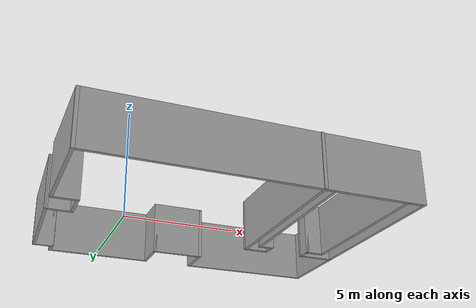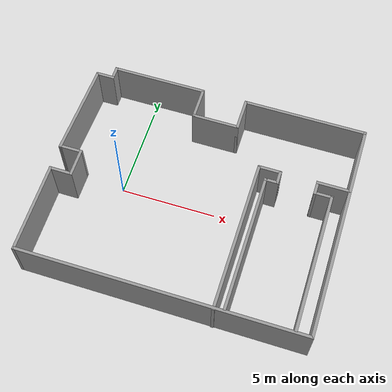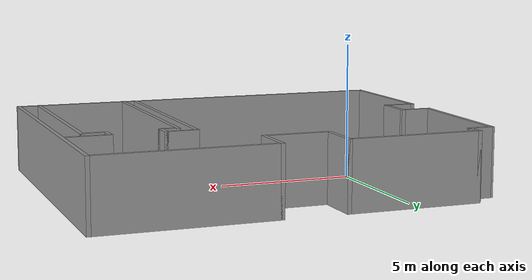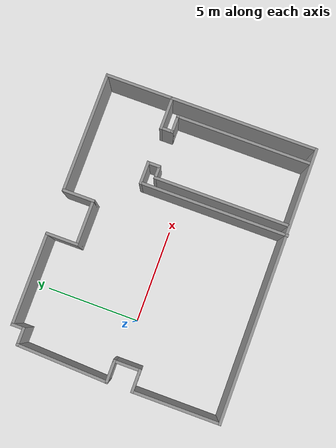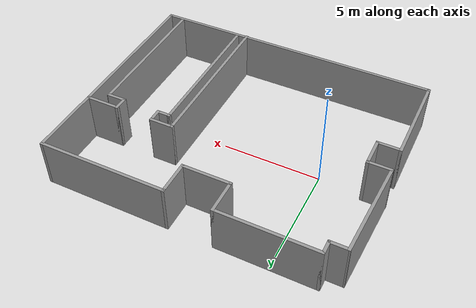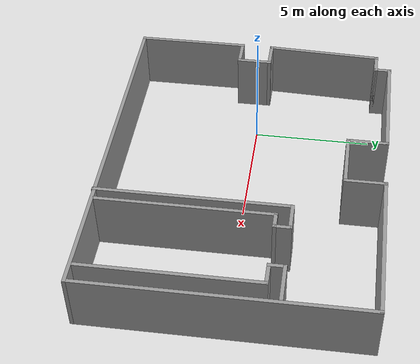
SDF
<?xml version='1.0'?>
<sdf version='1.6'>
  <model name='test3'>
    <pose frame=''>4 0 0 0 -0 0</pose>
    <link name='Wall_0'>
      <collision name='Wall_0_Collision'>
        <geometry>
          <box>
            <size>1 0.15 2.5</size>
          </box>
        </geometry>
        <pose frame=''>0 0 1.25 0 -0 0</pose>
      </collision>
      <visual name='Wall_0_Visual'>
        <pose frame=''>0 0 1.25 0 -0 0</pose>
        <geometry>
          <box>
            <size>1 0.15 2.5</size>
          </box>
        </geometry>
        <material>
          <script>
            <uri>file://media/materials/scripts/gazebo.material</uri>
            <name>Gazebo/Grey</name>
          </script>
          <ambient>1 1 1 1</ambient>
        </material>
      </visual>
      <pose frame=''>-6.67347 5.09486 0 0 -0 0</pose>
    </link>
    <link name='Wall_1'>
      <collision name='Wall_1_Collision'>
        <geometry>
          <box>
            <size>0.75 0.15 2.5</size>
          </box>
        </geometry>
        <pose frame=''>0 0 1.25 0 -0 0</pose>
      </collision>
      <visual name='Wall_1_Visual'>
        <pose frame=''>0 0 1.25 0 -0 0</pose>
        <geometry>
          <box>
            <size>0.75 0.15 2.5</size>
          </box>
        </geometry>
        <material>
          <script>
            <uri>file://media/materials/scripts/gazebo.material</uri>
            <name>Gazebo/Grey</name>
          </script>
          <ambient>1 1 1 1</ambient>
        </material>
      </visual>
      <pose frame=''>-6.24847 5.39486 0 0 -0 1.5708</pose>
    </link>
    <link name='Wall_10'>
      <collision name='Wall_10_Collision'>
        <geometry>
          <box>
            <size>1.25 0.15 2.5</size>
          </box>
        </geometry>
        <pose frame=''>0 0 1.25 0 -0 0</pose>
      </collision>
      <visual name='Wall_10_Visual'>
        <pose frame=''>0 0 1.25 0 -0 0</pose>
        <geometry>
          <box>
            <size>1.25 0.15 2.5</size>
          </box>
        </geometry>
        <material>
          <script>
            <uri>file://media/materials/scripts/gazebo.material</uri>
            <name>Gazebo/Grey</name>
          </script>
          <ambient>1 1 1 1</ambient>
        </material>
      </visual>
      <pose frame=''>-6.74847 -1.05514 0 0 -0 0</pose>
    </link>
    <link name='Wall_11'>
      <collision name='Wall_11_Collision'>
        <geometry>
          <box>
            <size>1.5 0.15 2.5</size>
          </box>
        </geometry>
        <pose frame=''>0 0 1.25 0 -0 0</pose>
      </collision>
      <visual name='Wall_11_Visual'>
        <pose frame=''>0 0 1.25 0 -0 0</pose>
        <geometry>
          <box>
            <size>1.5 0.15 2.5</size>
          </box>
        </geometry>
        <material>
          <script>
            <uri>file://media/materials/scripts/gazebo.material</uri>
            <name>Gazebo/Grey</name>
          </script>
          <ambient>1 1 1 1</ambient>
        </material>
      </visual>
      <pose frame=''>-6.19847 -0.380137 0 0 -0 1.5708</pose>
    </link>
    <link name='Wall_12'>
      <collision name='Wall_12_Collision'>
        <geometry>
          <box>
            <size>1.25 0.15 2.5</size>
          </box>
        </geometry>
        <pose frame=''>0 0 1.25 0 -0 0</pose>
      </collision>
      <visual name='Wall_12_Visual'>
        <pose frame=''>0 0 1.25 0 -0 0</pose>
        <geometry>
          <box>
            <size>1.25 0.15 2.5</size>
          </box>
        </geometry>
        <material>
          <script>
            <uri>file://media/materials/scripts/gazebo.material</uri>
            <name>Gazebo/Grey</name>
          </script>
          <ambient>1 1 1 1</ambient>
        </material>
      </visual>
      <pose frame=''>-6.74847 0.294863 0 0 -0 3.14159</pose>
    </link>
    <link name='Wall_13'>
      <collision name='Wall_13_Collision'>
        <geometry>
          <box>
            <size>4.95416 0.15 2.5</size>
          </box>
        </geometry>
        <pose frame=''>0 0 1.25 0 -0 0</pose>
      </collision>
      <visual name='Wall_13_Visual'>
        <pose frame=''>0 0 1.25 0 -0 0</pose>
        <geometry>
          <box>
            <size>4.95416 0.15 2.5</size>
          </box>
        </geometry>
        <material>
          <script>
            <uri>file://media/materials/scripts/gazebo.material</uri>
            <name>Gazebo/Grey</name>
          </script>
          <ambient>1 1 1 1</ambient>
        </material>
      </visual>
      <pose frame=''>-7.19847 2.69486 0 0 -0 1.52915</pose>
    </link>
    <link name='Wall_15'>
      <collision name='Wall_15_Collision'>
        <geometry>
          <box>
            <size>1.25 0.15 2.5</size>
          </box>
        </geometry>
        <pose frame=''>0 0 1.25 0 -0 0</pose>
      </collision>
      <visual name='Wall_15_Visual'>
        <pose frame=''>0 0 1.25 0 -0 0</pose>
        <geometry>
          <box>
            <size>1.25 0.15 2.5</size>
          </box>
        </geometry>
        <material>
          <script>
            <uri>file://media/materials/scripts/gazebo.material</uri>
            <name>Gazebo/Grey</name>
          </script>
          <ambient>1 1 1 1</ambient>
        </material>
      </visual>
      <pose frame=''>3.19434 2.15514 0 0 -0 0</pose>
    </link>
    <link name='Wall_16'>
      <collision name='Wall_16_Collision'>
        <geometry>
          <box>
            <size>0.75 0.15 2.5</size>
          </box>
        </geometry>
        <pose frame=''>0 0 1.25 0 -0 0</pose>
      </collision>
      <visual name='Wall_16_Visual'>
        <pose frame=''>0 0 1.25 0 -0 0</pose>
        <geometry>
          <box>
            <size>0.75 0.15 2.5</size>
          </box>
        </geometry>
        <material>
          <script>
            <uri>file://media/materials/scripts/gazebo.material</uri>
            <name>Gazebo/Grey</name>
          </script>
          <ambient>1 1 1 1</ambient>
        </material>
      </visual>
      <pose frame=''>3.74434 1.85514 0 0 0 -1.5708</pose>
    </link>
    <link name='Wall_17'>
      <collision name='Wall_17_Collision'>
        <geometry>
          <box>
            <size>0.75 0.15 2.5</size>
          </box>
        </geometry>
        <pose frame=''>0 0 1.25 0 -0 0</pose>
      </collision>
      <visual name='Wall_17_Visual'>
        <pose frame=''>0 0 1.25 0 -0 0</pose>
        <geometry>
          <box>
            <size>0.75 0.15 2.5</size>
          </box>
        </geometry>
        <material>
          <script>
            <uri>file://media/materials/scripts/gazebo.material</uri>
            <name>Gazebo/Grey</name>
          </script>
          <ambient>1 1 1 1</ambient>
        </material>
      </visual>
      <pose frame=''>3.44434 1.55514 0 0 -0 3.14159</pose>
    </link>
    <link name='Wall_18'>
      <collision name='Wall_18_Collision'>
        <geometry>
          <box>
            <size>7.25 0.15 2.5</size>
          </box>
        </geometry>
        <pose frame=''>0 0 1.25 0 -0 0</pose>
      </collision>
      <visual name='Wall_18_Visual'>
        <pose frame=''>0 0 1.25 0 -0 0</pose>
        <geometry>
          <box>
            <size>7.25 0.15 2.5</size>
          </box>
        </geometry>
        <material>
          <script>
            <uri>file://media/materials/scripts/gazebo.material</uri>
            <name>Gazebo/Grey</name>
          </script>
          <ambient>1 1 1 1</ambient>
        </material>
      </visual>
      <pose frame=''>3.14434 -1.99486 0 0 0 -1.5708</pose>
    </link>
    <link name='Wall_2'>
      <collision name='Wall_2_Collision'>
        <geometry>
          <box>
            <size>5 0.15 2.5</size>
          </box>
        </geometry>
        <pose frame=''>0 0 1.25 0 -0 0</pose>
      </collision>
      <visual name='Wall_2_Visual'>
        <pose frame=''>0 0 1.25 0 -0 0</pose>
        <geometry>
          <box>
            <size>5 0.15 2.5</size>
          </box>
        </geometry>
        <material>
          <script>
            <uri>file://media/materials/scripts/gazebo.material</uri>
            <name>Gazebo/Grey</name>
          </script>
          <ambient>1 1 1 1</ambient>
        </material>
      </visual>
      <pose frame=''>-3.82347 5.69486 0 0 -0 0</pose>
    </link>
    <link name='Wall_20'>
      <collision name='Wall_20_Collision'>
        <geometry>
          <box>
            <size>8 0.15 2.5</size>
          </box>
        </geometry>
        <pose frame=''>0 0 1.25 0 -0 0</pose>
      </collision>
      <visual name='Wall_20_Visual'>
        <pose frame=''>0 0 1.25 0 -0 0</pose>
        <geometry>
          <box>
            <size>8 0.15 2.5</size>
          </box>
        </geometry>
        <material>
          <script>
            <uri>file://media/materials/scripts/gazebo.material</uri>
            <name>Gazebo/Grey</name>
          </script>
          <ambient>1 1 1 1</ambient>
        </material>
      </visual>
      <pose frame=''>2.64434 -1.76986 0 0 0 -1.5708</pose>
    </link>
    <link name='Wall_22'>
      <collision name='Wall_22_Collision'>
        <geometry>
          <box>
            <size>1.75 0.15 2.5</size>
          </box>
        </geometry>
        <pose frame=''>0 0 1.25 0 -0 0</pose>
      </collision>
      <visual name='Wall_22_Visual'>
        <pose frame=''>0 0 1.25 0 -0 0</pose>
        <geometry>
          <box>
            <size>1.75 0.15 2.5</size>
          </box>
        </geometry>
        <material>
          <script>
            <uri>file://media/materials/scripts/gazebo.material</uri>
            <name>Gazebo/Grey</name>
          </script>
          <ambient>1 1 1 1</ambient>
        </material>
      </visual>
      <pose frame=''>6.46434 2.15514 0 0 -0 0</pose>
    </link>
    <link name='Wall_24'>
      <collision name='Wall_24_Collision'>
        <geometry>
          <box>
            <size>0.75 0.15 2.5</size>
          </box>
        </geometry>
        <pose frame=''>0 0 1.25 0 -0 0</pose>
      </collision>
      <visual name='Wall_24_Visual'>
        <pose frame=''>0 0 1.25 0 -0 0</pose>
        <geometry>
          <box>
            <size>0.75 0.15 2.5</size>
          </box>
        </geometry>
        <material>
          <script>
            <uri>file://media/materials/scripts/gazebo.material</uri>
            <name>Gazebo/Grey</name>
          </script>
          <ambient>1 1 1 1</ambient>
        </material>
      </visual>
      <pose frame=''>5.66434 1.85514 0 0 0 -1.5708</pose>
    </link>
    <link name='Wall_25'>
      <collision name='Wall_25_Collision'>
        <geometry>
          <box>
            <size>1 0.15 2.5</size>
          </box>
        </geometry>
        <pose frame=''>0 0 1.25 0 -0 0</pose>
      </collision>
      <visual name='Wall_25_Visual'>
        <pose frame=''>0 0 1.25 0 -0 0</pose>
        <geometry>
          <box>
            <size>1 0.15 2.5</size>
          </box>
        </geometry>
        <material>
          <script>
            <uri>file://media/materials/scripts/gazebo.material</uri>
            <name>Gazebo/Grey</name>
          </script>
          <ambient>1 1 1 1</ambient>
        </material>
      </visual>
      <pose frame=''>6.08934 1.55514 0 0 -0 0</pose>
    </link>
    <link name='Wall_26'>
      <collision name='Wall_26_Collision'>
        <geometry>
          <box>
            <size>7.25 0.15 2.5</size>
          </box>
        </geometry>
        <pose frame=''>0 0 1.25 0 -0 0</pose>
      </collision>
      <visual name='Wall_26_Visual'>
        <pose frame=''>0 0 1.25 0 -0 0</pose>
        <geometry>
          <box>
            <size>7.25 0.15 2.5</size>
          </box>
        </geometry>
        <material>
          <script>
            <uri>file://media/materials/scripts/gazebo.material</uri>
            <name>Gazebo/Grey</name>
          </script>
          <ambient>1 1 1 1</ambient>
        </material>
      </visual>
      <pose frame=''>6.51434 -1.99486 0 0 0 -1.5708</pose>
    </link>
    <link name='Wall_3'>
      <collision name='Wall_3_Collision'>
        <geometry>
          <box>
            <size>1.75 0.15 2.5</size>
          </box>
        </geometry>
        <pose frame=''>0 0 1.25 0 -0 0</pose>
      </collision>
      <visual name='Wall_3_Visual'>
        <pose frame=''>0 0 1.25 0 -0 0</pose>
        <geometry>
          <box>
            <size>1.75 0.15 2.5</size>
          </box>
        </geometry>
        <material>
          <script>
            <uri>file://media/materials/scripts/gazebo.material</uri>
            <name>Gazebo/Grey</name>
          </script>
          <ambient>1 1 1 1</ambient>
        </material>
      </visual>
      <pose frame=''>-1.39847 4.89486 0 0 0 -1.5708</pose>
    </link>
    <link name='Wall_4'>
      <collision name='Wall_4_Collision'>
        <geometry>
          <box>
            <size>2.5 0.15 2.5</size>
          </box>
        </geometry>
        <pose frame=''>0 0 1.25 0 -0 0</pose>
      </collision>
      <visual name='Wall_4_Visual'>
        <pose frame=''>0 0 1.25 0 -0 0</pose>
        <geometry>
          <box>
            <size>2.5 0.15 2.5</size>
          </box>
        </geometry>
        <material>
          <script>
            <uri>file://media/materials/scripts/gazebo.material</uri>
            <name>Gazebo/Grey</name>
          </script>
          <ambient>1 1 1 1</ambient>
        </material>
      </visual>
      <pose frame=''>-0.223472 4.09486 0 0 -0 0</pose>
    </link>
    <link name='Wall_5'>
      <collision name='Wall_5_Collision'>
        <geometry>
          <box>
            <size>1.75 0.15 2.5</size>
          </box>
        </geometry>
        <pose frame=''>0 0 1.25 0 -0 0</pose>
      </collision>
      <visual name='Wall_5_Visual'>
        <pose frame=''>0 0 1.25 0 -0 0</pose>
        <geometry>
          <box>
            <size>1.75 0.15 2.5</size>
          </box>
        </geometry>
        <material>
          <script>
            <uri>file://media/materials/scripts/gazebo.material</uri>
            <name>Gazebo/Grey</name>
          </script>
          <ambient>1 1 1 1</ambient>
        </material>
      </visual>
      <pose frame=''>0.951528 4.89486 0 0 -0 1.5708</pose>
    </link>
    <link name='Wall_6'>
      <collision name='Wall_6_Collision'>
        <geometry>
          <box>
            <size>6.5 0.15 2.5</size>
          </box>
        </geometry>
        <pose frame=''>0 0 1.25 0 -0 0</pose>
      </collision>
      <visual name='Wall_6_Visual'>
        <pose frame=''>0 0 1.25 0 -0 0</pose>
        <geometry>
          <box>
            <size>6.5 0.15 2.5</size>
          </box>
        </geometry>
        <material>
          <script>
            <uri>file://media/materials/scripts/gazebo.material</uri>
            <name>Gazebo/Grey</name>
          </script>
          <ambient>1 1 1 1</ambient>
        </material>
      </visual>
      <pose frame=''>4.12653 5.69486 0 0 -0 0</pose>
    </link>
    <link name='Wall_7'>
      <collision name='Wall_7_Collision'>
        <geometry>
          <box>
            <size>11.5 0.15 2.5</size>
          </box>
        </geometry>
        <pose frame=''>0 0 1.25 0 -0 0</pose>
      </collision>
      <visual name='Wall_7_Visual'>
        <pose frame=''>0 0 1.25 0 -0 0</pose>
        <geometry>
          <box>
            <size>11.5 0.15 2.5</size>
          </box>
        </geometry>
        <material>
          <script>
            <uri>file://media/materials/scripts/gazebo.material</uri>
            <name>Gazebo/Grey</name>
          </script>
          <ambient>1 1 1 1</ambient>
        </material>
      </visual>
      <pose frame=''>7.30153 0.019863 0 0 0 -1.5708</pose>
    </link>
    <link name='Wall_8'>
      <collision name='Wall_8_Collision'>
        <geometry>
          <box>
            <size>14.75 0.15 2.5</size>
          </box>
        </geometry>
        <pose frame=''>0 0 1.25 0 -0 0</pose>
      </collision>
      <visual name='Wall_8_Visual'>
        <pose frame=''>0 0 1.25 0 -0 0</pose>
        <geometry>
          <box>
            <size>14.75 0.15 2.5</size>
          </box>
        </geometry>
        <material>
          <script>
            <uri>file://media/materials/scripts/gazebo.material</uri>
            <name>Gazebo/Grey</name>
          </script>
          <ambient>1 1 1 1</ambient>
        </material>
      </visual>
      <pose frame=''>0.001528 -5.65514 0 0 -0 3.14159</pose>
    </link>
    <link name='Wall_9'>
      <collision name='Wall_9_Collision'>
        <geometry>
          <box>
            <size>4.75 0.15 2.5</size>
          </box>
        </geometry>
        <pose frame=''>0 0 1.25 0 -0 0</pose>
      </collision>
      <visual name='Wall_9_Visual'>
        <pose frame=''>0 0 1.25 0 -0 0</pose>
        <geometry>
          <box>
            <size>4.75 0.15 2.5</size>
          </box>
        </geometry>
        <material>
          <script>
            <uri>file://media/materials/scripts/gazebo.material</uri>
            <name>Gazebo/Grey</name>
          </script>
          <ambient>1 1 1 1</ambient>
        </material>
      </visual>
      <pose frame=''>-7.29847 -3.35514 0 0 -0 1.5708</pose>
    </link>
    <static>1</static>
  </model>
</sdf>
